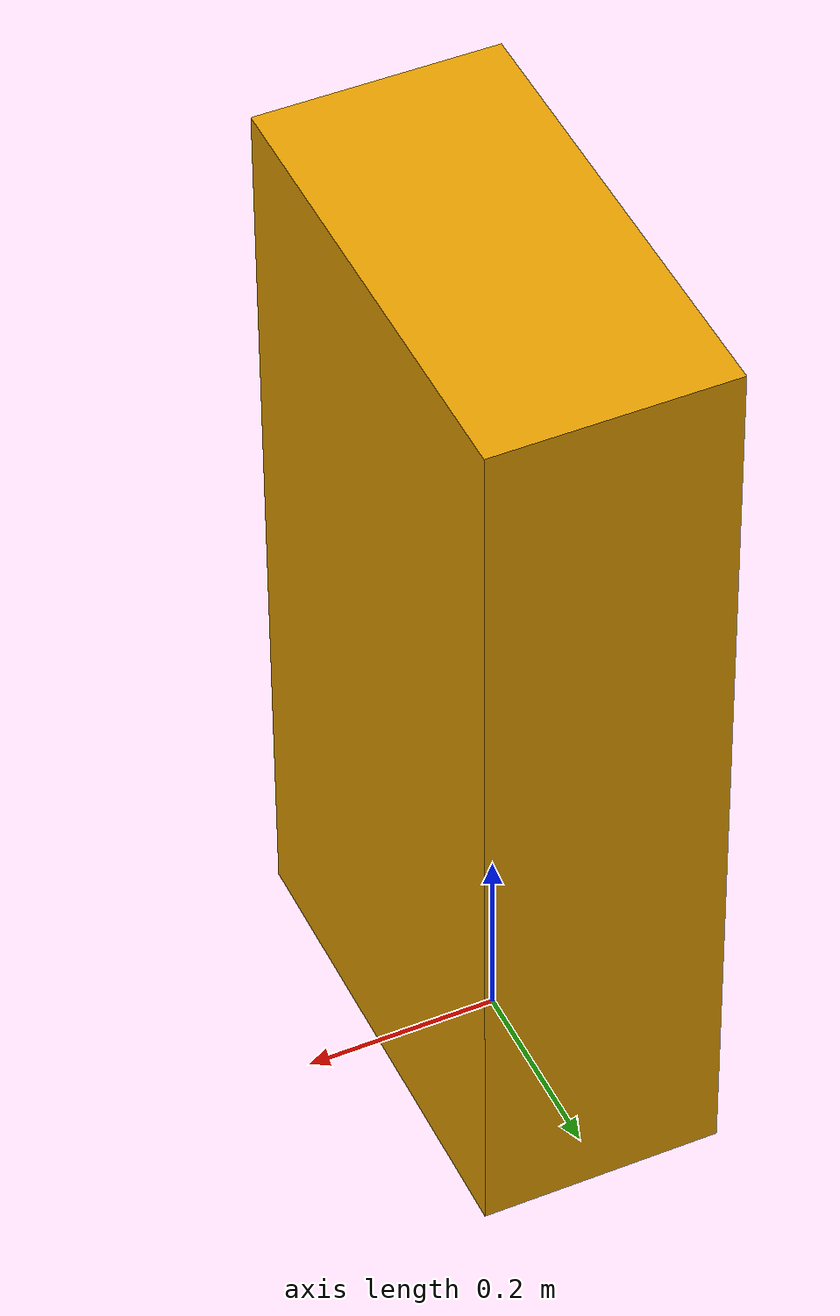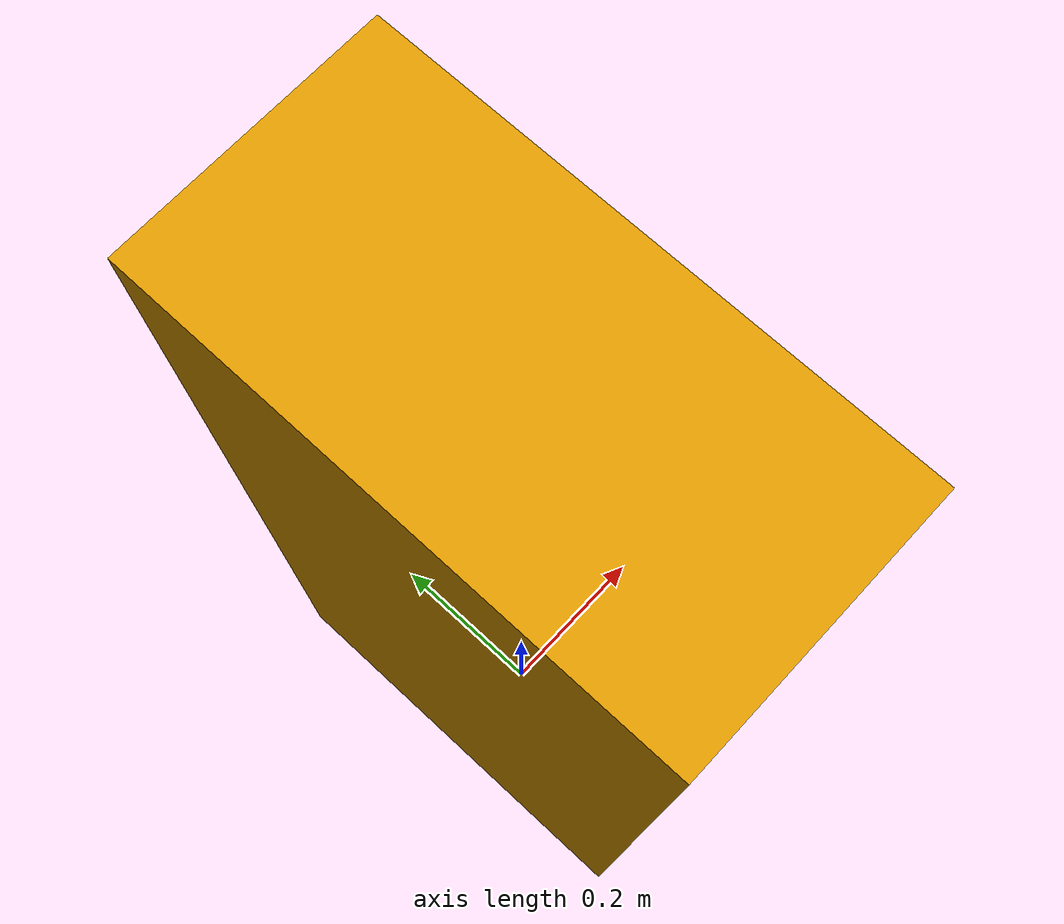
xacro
<?xml version="1.0" encoding="utf-8"?>
<robot name="test" xmlns:xacro="http://www.ros.org/wiki/xacro">
  <link name="base_link">
    <inertial>
      <origin xyz="0 0 0" rpy="0 0 0" />
      <mass value="10.0" />
      <inertia ixx="0.1" ixy="0.0" ixz="0.0" iyy="0.1" iyz="0.0" izz="0.1" />
    </inertial>
    <visual>
      <origin xyz="0 0 0.5" rpy="0 0 0" />
      <geometry>
        <box size="0.25 0.5 1"/>
      </geometry>
    </visual>
    <collision>
      <origin xyz="0 0 0.5" rpy="0 0 0" />
      <geometry>
        <box size="0.25 0.5 1"/>
      </geometry>
    </collision>
  </link>

  <!-- IMU Sensor -->
  <gazebo reference="base_link">
    <sensor type="imu" name="imu_sensor">
      <always_on>true</always_on>
      <update_rate>50</update_rate>
      <imu>
        <angular_velocity>
          <noise type="gaussian">
            <mean>0.0</mean>
            <stddev>0.01</stddev>
          </noise>
        </angular_velocity>
        <linear_acceleration>
          <noise type="gaussian">
            <mean>0.0</mean>
            <stddev>0.01</stddev>
          </noise>
        </linear_acceleration>
      </imu>
      <plugin name="imu_sensor" filename="libgazebo_ros_imu_sensor.so">
        <ros>
          <namespace>imu</namespace>
          <remapping>~/out:=data</remapping>
        </ros>
        <initial_orientation_as_reference>false</initial_orientation_as_reference>
      </plugin>
    </sensor>
  </gazebo>

</robot>
